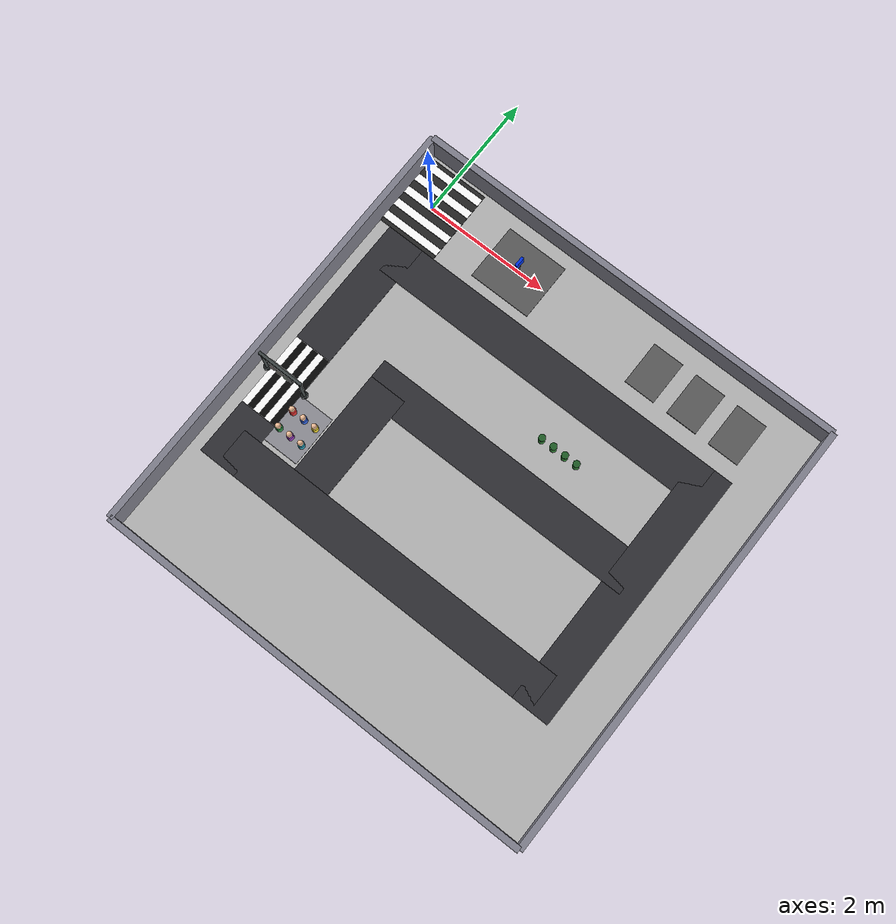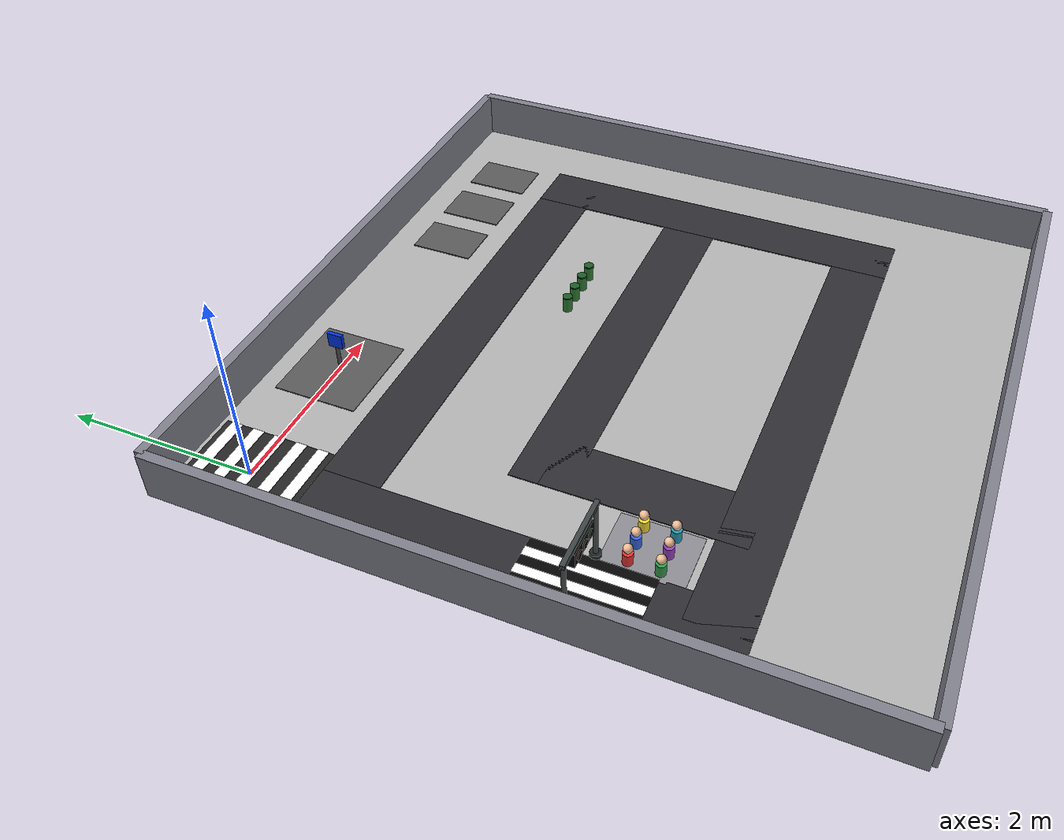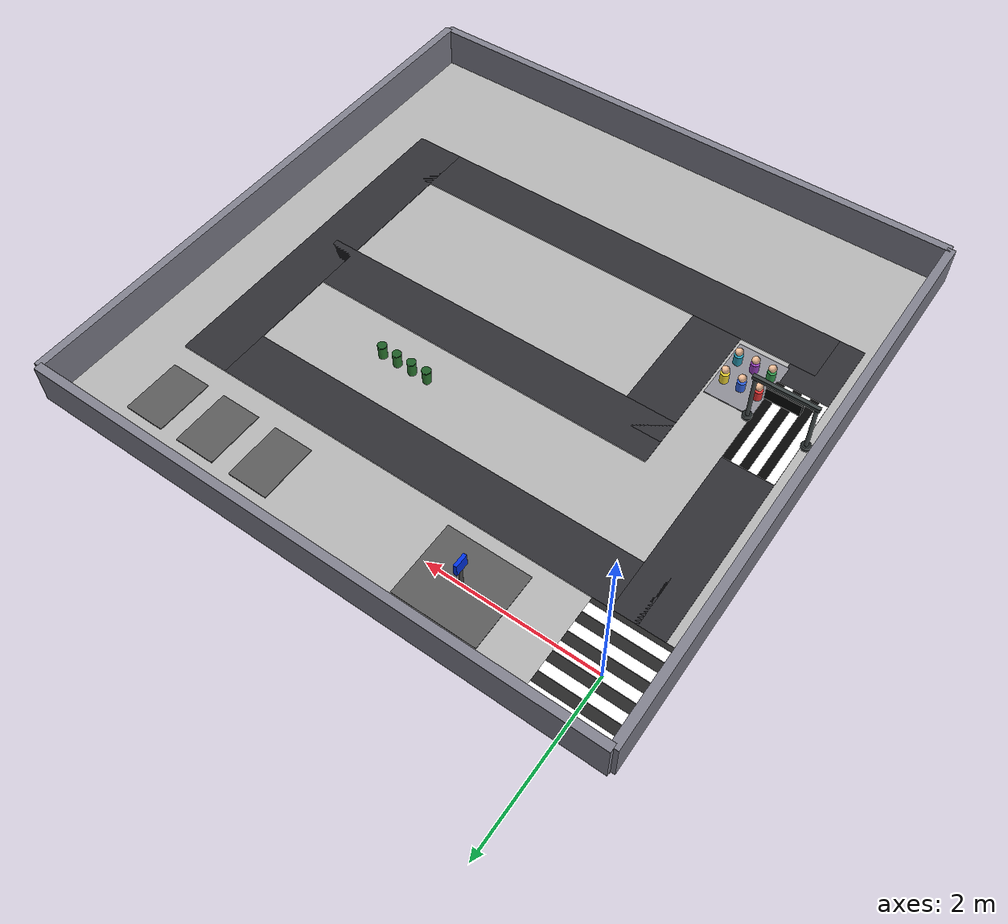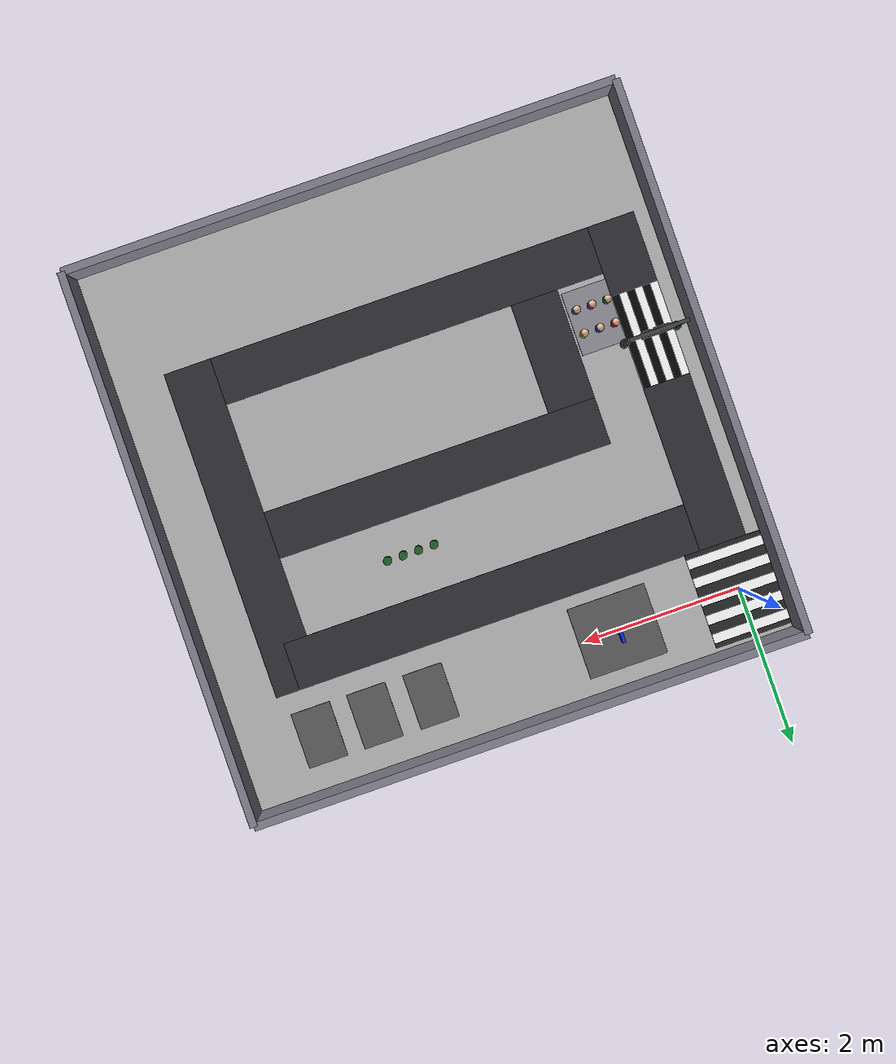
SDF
<sdf version="1.7">
 <world name="robot_nav_field">
  <model name="traffic_light_top">
   <static>1</static>
   <link name="gantry">
    <collision name="left_post_collision">
     <pose>-0.34 0 0.32 0 -0 0</pose>
     <geometry><cylinder><radius>0.022</radius><length>0.64</length></cylinder></geometry>
    </collision>
    <collision name="right_post_collision">
     <pose>0.34 0 0.32 0 -0 0</pose>
     <geometry><cylinder><radius>0.022</radius><length>0.64</length></cylinder></geometry>
    </collision>
    <collision name="crossbar_collision">
     <pose>0 0 0.66 0 -0 0</pose>
     <geometry><box><size>0.75 0.045 0.045</size></box></geometry>
    </collision>
    <collision name="housing_collision">
     <pose>0 0 0.55 0 -0 0</pose>
     <geometry><box><size>0.4 0.075 0.16</size></box></geometry>
    </collision>
    <visual name="left_foot">
     <pose>-0.34 0 0.025 0 -0 0</pose>
     <geometry><cylinder><radius>0.055</radius><length>0.05</length></cylinder></geometry>
     <material><ambient>0.06 0.07 0.07 1</ambient><diffuse>0.12 0.14 0.14 1</diffuse></material>
    </visual>
    <visual name="right_foot">
     <pose>0.34 0 0.025 0 -0 0</pose>
     <geometry><cylinder><radius>0.055</radius><length>0.05</length></cylinder></geometry>
     <material><ambient>0.06 0.07 0.07 1</ambient><diffuse>0.12 0.14 0.14 1</diffuse></material>
    </visual>
    <visual name="left_post">
     <pose>-0.34 0 0.32 0 -0 0</pose>
     <geometry><cylinder><radius>0.022</radius><length>0.64</length></cylinder></geometry>
     <material>
      <ambient>0.16 0.18 0.18 1</ambient>
      <diffuse>0.28 0.31 0.31 1</diffuse>
      <specular>0.25 0.25 0.25 1</specular>
     </material>
    </visual>
    <visual name="right_post">
     <pose>0.34 0 0.32 0 -0 0</pose>
     <geometry><cylinder><radius>0.022</radius><length>0.64</length></cylinder></geometry>
     <material>
      <ambient>0.16 0.18 0.18 1</ambient>
      <diffuse>0.28 0.31 0.31 1</diffuse>
      <specular>0.25 0.25 0.25 1</specular>
     </material>
    </visual>
    <visual name="crossbar">
     <pose>0 0 0.66 0 -0 0</pose>
     <geometry><box><size>0.75 0.045 0.045</size></box></geometry>
     <material>
      <ambient>0.12 0.14 0.14 1</ambient>
      <diffuse>0.24 0.27 0.27 1</diffuse>
      <specular>0.25 0.25 0.25 1</specular>
     </material>
    </visual>
    <visual name="left_hanger">
     <pose>-0.14 0 0.615 0 -0 0</pose>
     <geometry><box><size>0.025 0.035 0.07</size></box></geometry>
     <material><ambient>0.06 0.07 0.07 1</ambient><diffuse>0.12 0.14 0.14 1</diffuse></material>
    </visual>
    <visual name="right_hanger">
     <pose>0.14 0 0.615 0 -0 0</pose>
     <geometry><box><size>0.025 0.035 0.07</size></box></geometry>
     <material><ambient>0.06 0.07 0.07 1</ambient><diffuse>0.12 0.14 0.14 1</diffuse></material>
    </visual>
    <visual name="housing">
     <pose>0 0 0.55 0 -0 0</pose>
     <geometry><box><size>0.4 0.075 0.16</size></box></geometry>
     <material>
      <ambient>0.008 0.01 0.01 1</ambient>
      <diffuse>0.016 0.02 0.02 1</diffuse>
      <specular>0.1 0.1 0.1 1</specular>
     </material>
    </visual>
    <visual name="red_lens_off">
     <pose>-0.12 -0.044 0.55 1.5708 -0 0</pose>
     <geometry><cylinder><radius>0.045</radius><length>0.014</length></cylinder></geometry>
     <material><ambient>0.03 0.001 0.001 1</ambient><diffuse>0.045 0.002 0.002 1</diffuse></material>
    </visual>
    <visual name="yellow_lens_off">
     <pose>0 -0.044 0.55 1.5708 -0 0</pose>
     <geometry><cylinder><radius>0.045</radius><length>0.014</length></cylinder></geometry>
     <material><ambient>0.025 0.015 0.001 1</ambient><diffuse>0.04 0.024 0.002 1</diffuse></material>
    </visual>
    <visual name="green_lens_off">
     <pose>0.12 -0.044 0.55 1.5708 -0 0</pose>
     <geometry><cylinder><radius>0.045</radius><length>0.014</length></cylinder></geometry>
     <material><ambient>0.001 0.03 0.003 1</ambient><diffuse>0.002 0.045 0.004 1</diffuse></material>
    </visual>
   </link>
   <pose>0 -3.3 0 0 -0 0</pose>
  </model>
  <model name="traffic_light_top_red_lens">
   <static>1</static>
   <link name="gantry">
    <collision name="left_post_collision">
     <pose>-0.34 0 0.32 0 -0 0</pose>
     <geometry><cylinder><radius>0.022</radius><length>0.64</length></cylinder></geometry>
    </collision>
    <collision name="right_post_collision">
     <pose>0.34 0 0.32 0 -0 0</pose>
     <geometry><cylinder><radius>0.022</radius><length>0.64</length></cylinder></geometry>
    </collision>
    <collision name="crossbar_collision">
     <pose>0 0 0.66 0 -0 0</pose>
     <geometry><box><size>0.75 0.045 0.045</size></box></geometry>
    </collision>
    <collision name="housing_collision">
     <pose>0 0 0.55 0 -0 0</pose>
     <geometry><box><size>0.4 0.075 0.16</size></box></geometry>
    </collision>
    <visual name="left_foot">
     <pose>-0.34 0 0.025 0 -0 0</pose>
     <geometry><cylinder><radius>0.055</radius><length>0.05</length></cylinder></geometry>
     <material><ambient>0.06 0.07 0.07 1</ambient><diffuse>0.12 0.14 0.14 1</diffuse></material>
    </visual>
    <visual name="right_foot">
     <pose>0.34 0 0.025 0 -0 0</pose>
     <geometry><cylinder><radius>0.055</radius><length>0.05</length></cylinder></geometry>
     <material><ambient>0.06 0.07 0.07 1</ambient><diffuse>0.12 0.14 0.14 1</diffuse></material>
    </visual>
    <visual name="left_post">
     <pose>-0.34 0 0.32 0 -0 0</pose>
     <geometry><cylinder><radius>0.022</radius><length>0.64</length></cylinder></geometry>
     <material>
      <ambient>0.16 0.18 0.18 1</ambient>
      <diffuse>0.28 0.31 0.31 1</diffuse>
      <specular>0.25 0.25 0.25 1</specular>
     </material>
    </visual>
    <visual name="right_post">
     <pose>0.34 0 0.32 0 -0 0</pose>
     <geometry><cylinder><radius>0.022</radius><length>0.64</length></cylinder></geometry>
     <material>
      <ambient>0.16 0.18 0.18 1</ambient>
      <diffuse>0.28 0.31 0.31 1</diffuse>
      <specular>0.25 0.25 0.25 1</specular>
     </material>
    </visual>
    <visual name="crossbar">
     <pose>0 0 0.66 0 -0 0</pose>
     <geometry><box><size>0.75 0.045 0.045</size></box></geometry>
     <material>
      <ambient>0.12 0.14 0.14 1</ambient>
      <diffuse>0.24 0.27 0.27 1</diffuse>
      <specular>0.25 0.25 0.25 1</specular>
     </material>
    </visual>
    <visual name="left_hanger">
     <pose>-0.14 0 0.615 0 -0 0</pose>
     <geometry><box><size>0.025 0.035 0.07</size></box></geometry>
     <material><ambient>0.06 0.07 0.07 1</ambient><diffuse>0.12 0.14 0.14 1</diffuse></material>
    </visual>
    <visual name="right_hanger">
     <pose>0.14 0 0.615 0 -0 0</pose>
     <geometry><box><size>0.025 0.035 0.07</size></box></geometry>
     <material><ambient>0.06 0.07 0.07 1</ambient><diffuse>0.12 0.14 0.14 1</diffuse></material>
    </visual>
    <visual name="housing">
     <pose>0 0 0.55 0 -0 0</pose>
     <geometry><box><size>0.4 0.075 0.16</size></box></geometry>
     <material>
      <ambient>0.008 0.01 0.01 1</ambient>
      <diffuse>0.016 0.02 0.02 1</diffuse>
      <specular>0.1 0.1 0.1 1</specular>
     </material>
    </visual>
    <visual name="red_lens_off">
     <pose>-0.12 -0.044 0.55 1.5708 -0 0</pose>
     <geometry><cylinder><radius>0.045</radius><length>0.014</length></cylinder></geometry>
     <material><ambient>0.03 0.001 0.001 1</ambient><diffuse>0.045 0.002 0.002 1</diffuse></material>
    </visual>
    <visual name="yellow_lens_off">
     <pose>0 -0.044 0.55 1.5708 -0 0</pose>
     <geometry><cylinder><radius>0.045</radius><length>0.014</length></cylinder></geometry>
     <material><ambient>0.025 0.015 0.001 1</ambient><diffuse>0.04 0.024 0.002 1</diffuse></material>
    </visual>
    <visual name="green_lens_off">
     <pose>0.12 -0.044 0.55 1.5708 -0 0</pose>
     <geometry><cylinder><radius>0.045</radius><length>0.014</length></cylinder></geometry>
     <material><ambient>0.001 0.03 0.003 1</ambient><diffuse>0.002 0.045 0.004 1</diffuse></material>
    </visual>
   </link>
   <pose>0 -3.3 0 0 -0 0</pose>
  </model>
  <model name="traffic_light_top_yellow_lens">
   <static>1</static>
   <link name="gantry">
    <collision name="left_post_collision">
     <pose>-0.34 0 0.32 0 -0 0</pose>
     <geometry><cylinder><radius>0.022</radius><length>0.64</length></cylinder></geometry>
    </collision>
    <collision name="right_post_collision">
     <pose>0.34 0 0.32 0 -0 0</pose>
     <geometry><cylinder><radius>0.022</radius><length>0.64</length></cylinder></geometry>
    </collision>
    <collision name="crossbar_collision">
     <pose>0 0 0.66 0 -0 0</pose>
     <geometry><box><size>0.75 0.045 0.045</size></box></geometry>
    </collision>
    <collision name="housing_collision">
     <pose>0 0 0.55 0 -0 0</pose>
     <geometry><box><size>0.4 0.075 0.16</size></box></geometry>
    </collision>
    <visual name="left_foot">
     <pose>-0.34 0 0.025 0 -0 0</pose>
     <geometry><cylinder><radius>0.055</radius><length>0.05</length></cylinder></geometry>
     <material><ambient>0.06 0.07 0.07 1</ambient><diffuse>0.12 0.14 0.14 1</diffuse></material>
    </visual>
    <visual name="right_foot">
     <pose>0.34 0 0.025 0 -0 0</pose>
     <geometry><cylinder><radius>0.055</radius><length>0.05</length></cylinder></geometry>
     <material><ambient>0.06 0.07 0.07 1</ambient><diffuse>0.12 0.14 0.14 1</diffuse></material>
    </visual>
    <visual name="left_post">
     <pose>-0.34 0 0.32 0 -0 0</pose>
     <geometry><cylinder><radius>0.022</radius><length>0.64</length></cylinder></geometry>
     <material>
      <ambient>0.16 0.18 0.18 1</ambient>
      <diffuse>0.28 0.31 0.31 1</diffuse>
      <specular>0.25 0.25 0.25 1</specular>
     </material>
    </visual>
    <visual name="right_post">
     <pose>0.34 0 0.32 0 -0 0</pose>
     <geometry><cylinder><radius>0.022</radius><length>0.64</length></cylinder></geometry>
     <material>
      <ambient>0.16 0.18 0.18 1</ambient>
      <diffuse>0.28 0.31 0.31 1</diffuse>
      <specular>0.25 0.25 0.25 1</specular>
     </material>
    </visual>
    <visual name="crossbar">
     <pose>0 0 0.66 0 -0 0</pose>
     <geometry><box><size>0.75 0.045 0.045</size></box></geometry>
     <material>
      <ambient>0.12 0.14 0.14 1</ambient>
      <diffuse>0.24 0.27 0.27 1</diffuse>
      <specular>0.25 0.25 0.25 1</specular>
     </material>
    </visual>
    <visual name="left_hanger">
     <pose>-0.14 0 0.615 0 -0 0</pose>
     <geometry><box><size>0.025 0.035 0.07</size></box></geometry>
     <material><ambient>0.06 0.07 0.07 1</ambient><diffuse>0.12 0.14 0.14 1</diffuse></material>
    </visual>
    <visual name="right_hanger">
     <pose>0.14 0 0.615 0 -0 0</pose>
     <geometry><box><size>0.025 0.035 0.07</size></box></geometry>
     <material><ambient>0.06 0.07 0.07 1</ambient><diffuse>0.12 0.14 0.14 1</diffuse></material>
    </visual>
    <visual name="housing">
     <pose>0 0 0.55 0 -0 0</pose>
     <geometry><box><size>0.4 0.075 0.16</size></box></geometry>
     <material>
      <ambient>0.008 0.01 0.01 1</ambient>
      <diffuse>0.016 0.02 0.02 1</diffuse>
      <specular>0.1 0.1 0.1 1</specular>
     </material>
    </visual>
    <visual name="red_lens_off">
     <pose>-0.12 -0.044 0.55 1.5708 -0 0</pose>
     <geometry><cylinder><radius>0.045</radius><length>0.014</length></cylinder></geometry>
     <material><ambient>0.03 0.001 0.001 1</ambient><diffuse>0.045 0.002 0.002 1</diffuse></material>
    </visual>
    <visual name="yellow_lens_off">
     <pose>0 -0.044 0.55 1.5708 -0 0</pose>
     <geometry><cylinder><radius>0.045</radius><length>0.014</length></cylinder></geometry>
     <material><ambient>0.025 0.015 0.001 1</ambient><diffuse>0.04 0.024 0.002 1</diffuse></material>
    </visual>
    <visual name="green_lens_off">
     <pose>0.12 -0.044 0.55 1.5708 -0 0</pose>
     <geometry><cylinder><radius>0.045</radius><length>0.014</length></cylinder></geometry>
     <material><ambient>0.001 0.03 0.003 1</ambient><diffuse>0.002 0.045 0.004 1</diffuse></material>
    </visual>
   </link>
   <pose>0 -3.3 0 0 -0 0</pose>
  </model>
  <model name="traffic_light_top_green_lens">
   <static>1</static>
   <link name="gantry">
    <collision name="left_post_collision">
     <pose>-0.34 0 0.32 0 -0 0</pose>
     <geometry><cylinder><radius>0.022</radius><length>0.64</length></cylinder></geometry>
    </collision>
    <collision name="right_post_collision">
     <pose>0.34 0 0.32 0 -0 0</pose>
     <geometry><cylinder><radius>0.022</radius><length>0.64</length></cylinder></geometry>
    </collision>
    <collision name="crossbar_collision">
     <pose>0 0 0.66 0 -0 0</pose>
     <geometry><box><size>0.75 0.045 0.045</size></box></geometry>
    </collision>
    <collision name="housing_collision">
     <pose>0 0 0.55 0 -0 0</pose>
     <geometry><box><size>0.4 0.075 0.16</size></box></geometry>
    </collision>
    <visual name="left_foot">
     <pose>-0.34 0 0.025 0 -0 0</pose>
     <geometry><cylinder><radius>0.055</radius><length>0.05</length></cylinder></geometry>
     <material><ambient>0.06 0.07 0.07 1</ambient><diffuse>0.12 0.14 0.14 1</diffuse></material>
    </visual>
    <visual name="right_foot">
     <pose>0.34 0 0.025 0 -0 0</pose>
     <geometry><cylinder><radius>0.055</radius><length>0.05</length></cylinder></geometry>
     <material><ambient>0.06 0.07 0.07 1</ambient><diffuse>0.12 0.14 0.14 1</diffuse></material>
    </visual>
    <visual name="left_post">
     <pose>-0.34 0 0.32 0 -0 0</pose>
     <geometry><cylinder><radius>0.022</radius><length>0.64</length></cylinder></geometry>
     <material>
      <ambient>0.16 0.18 0.18 1</ambient>
      <diffuse>0.28 0.31 0.31 1</diffuse>
      <specular>0.25 0.25 0.25 1</specular>
     </material>
    </visual>
    <visual name="right_post">
     <pose>0.34 0 0.32 0 -0 0</pose>
     <geometry><cylinder><radius>0.022</radius><length>0.64</length></cylinder></geometry>
     <material>
      <ambient>0.16 0.18 0.18 1</ambient>
      <diffuse>0.28 0.31 0.31 1</diffuse>
      <specular>0.25 0.25 0.25 1</specular>
     </material>
    </visual>
    <visual name="crossbar">
     <pose>0 0 0.66 0 -0 0</pose>
     <geometry><box><size>0.75 0.045 0.045</size></box></geometry>
     <material>
      <ambient>0.12 0.14 0.14 1</ambient>
      <diffuse>0.24 0.27 0.27 1</diffuse>
      <specular>0.25 0.25 0.25 1</specular>
     </material>
    </visual>
    <visual name="left_hanger">
     <pose>-0.14 0 0.615 0 -0 0</pose>
     <geometry><box><size>0.025 0.035 0.07</size></box></geometry>
     <material><ambient>0.06 0.07 0.07 1</ambient><diffuse>0.12 0.14 0.14 1</diffuse></material>
    </visual>
    <visual name="right_hanger">
     <pose>0.14 0 0.615 0 -0 0</pose>
     <geometry><box><size>0.025 0.035 0.07</size></box></geometry>
     <material><ambient>0.06 0.07 0.07 1</ambient><diffuse>0.12 0.14 0.14 1</diffuse></material>
    </visual>
    <visual name="housing">
     <pose>0 0 0.55 0 -0 0</pose>
     <geometry><box><size>0.4 0.075 0.16</size></box></geometry>
     <material>
      <ambient>0.008 0.01 0.01 1</ambient>
      <diffuse>0.016 0.02 0.02 1</diffuse>
      <specular>0.1 0.1 0.1 1</specular>
     </material>
    </visual>
    <visual name="red_lens_off">
     <pose>-0.12 -0.044 0.55 1.5708 -0 0</pose>
     <geometry><cylinder><radius>0.045</radius><length>0.014</length></cylinder></geometry>
     <material><ambient>0.03 0.001 0.001 1</ambient><diffuse>0.045 0.002 0.002 1</diffuse></material>
    </visual>
    <visual name="yellow_lens_off">
     <pose>0 -0.044 0.55 1.5708 -0 0</pose>
     <geometry><cylinder><radius>0.045</radius><length>0.014</length></cylinder></geometry>
     <material><ambient>0.025 0.015 0.001 1</ambient><diffuse>0.04 0.024 0.002 1</diffuse></material>
    </visual>
    <visual name="green_lens_off">
     <pose>0.12 -0.044 0.55 1.5708 -0 0</pose>
     <geometry><cylinder><radius>0.045</radius><length>0.014</length></cylinder></geometry>
     <material><ambient>0.001 0.03 0.003 1</ambient><diffuse>0.002 0.045 0.004 1</diffuse></material>
    </visual>
   </link>
   <pose>0 -3.3 0 0 -0 0</pose>
  </model>
  <model name="ground_plane">
   <static>1</static>
   <pose>2.975 -2.8 -0.025 0 -0 0</pose>
   <link name="ground_link">
    <visual name="ground_visual">
     <geometry><box><size>7 7 0.05</size></box></geometry>
     <material><ambient>0.7 0.7 0.7 1</ambient><diffuse>0.7 0.7 0.7 1</diffuse></material>
    </visual>
    <collision name="ground_collision"><geometry><box><size>7 7 0.05</size></box></geometry></collision>
   </link>
  </model>
  <model name="boundary_walls">
   <static>1</static>
   <link name="north_wall">
    <pose>-0.525 -2.8 0.25 0 -0 0</pose>
    <visual name="north_visual">
     <geometry><box><size>0.1 7 0.5</size></box></geometry>
     <material><ambient>0.5 0.5 0.55 1</ambient><diffuse>0.5 0.5 0.55 1</diffuse></material>
    </visual>
    <collision name="north_collision"><geometry><box><size>0.1 7 0.5</size></box></geometry></collision>
   </link>
   <link name="south_wall">
    <pose>6.475 -2.8 0.25 0 -0 0</pose>
    <visual name="south_visual">
     <geometry><box><size>0.1 7 0.5</size></box></geometry>
     <material><ambient>0.5 0.5 0.55 1</ambient><diffuse>0.5 0.5 0.55 1</diffuse></material>
    </visual>
    <collision name="south_collision"><geometry><box><size>0.1 7 0.5</size></box></geometry></collision>
   </link>
   <link name="west_wall">
    <pose>2.975 -6.3 0.25 0 -0 0</pose>
    <visual name="west_visual">
     <geometry><box><size>7 0.1 0.5</size></box></geometry>
     <material><ambient>0.5 0.5 0.55 1</ambient><diffuse>0.5 0.5 0.55 1</diffuse></material>
    </visual>
    <collision name="west_collision"><geometry><box><size>7 0.1 0.5</size></box></geometry></collision>
   </link>
   <link name="east_wall">
    <pose>2.975 0.7 0.25 0 -0 0</pose>
    <visual name="east_visual">
     <geometry><box><size>7 0.1 0.5</size></box></geometry>
     <material><ambient>0.5 0.5 0.55 1</ambient><diffuse>0.5 0.5 0.55 1</diffuse></material>
    </visual>
    <collision name="east_collision"><geometry><box><size>7 0.1 0.5</size></box></geometry></collision>
   </link>
  </model>
  <model name="roads">
   <static>1</static>
   <link name="road_top">
    <pose>0 -2.7 0.005 0 -0 0</pose>
    <visual name="road_top_visual">
     <geometry><box><size>0.6 4.2 0.01</size></box></geometry>
     <material><ambient>0.18 0.18 0.2 1</ambient><diffuse>0.18 0.18 0.2 1</diffuse></material>
    </visual>
    <collision name="road_top_collision"><geometry><box><size>0.6 3.6 0.01</size></box></geometry></collision>
   </link>
   <link name="road_right">
    <pose>2.75 -0.9 0.005 0 -0 0</pose>
    <visual name="road_right_visual">
     <geometry><box><size>5.5 0.6 0.01</size></box></geometry>
     <material><ambient>0.18 0.18 0.2 1</ambient><diffuse>0.18 0.18 0.2 1</diffuse></material>
    </visual>
    <collision name="road_right_collision"><geometry><box><size>5.5 0.6 0.01</size></box></geometry></collision>
   </link>
   <link name="road_bottom_left">
    <pose>5.5 -2.7 0.005 0 -0 0</pose>
    <visual name="road_bl_visual">
     <geometry><box><size>0.6 4.2 0.01</size></box></geometry>
     <material><ambient>0.18 0.18 0.2 1</ambient><diffuse>0.18 0.18 0.2 1</diffuse></material>
    </visual>
    <collision name="road_bl_collision"><geometry><box><size>0.6 3.6 0.01</size></box></geometry></collision>
   </link>
   <link name="road_left">
    <pose>2.75 -4.5 0.005 0 -0 0</pose>
    <visual name="road_left_visual">
     <geometry><box><size>5.5 0.6 0.01</size></box></geometry>
     <material><ambient>0.18 0.18 0.2 1</ambient><diffuse>0.18 0.18 0.2 1</diffuse></material>
    </visual>
    <collision name="road_left_collision"><geometry><box><size>5.5 0.6 0.01</size></box></geometry></collision>
   </link>
   <link name="road_vertical">
    <pose>3.2 -2.5 0.005 0 -0 0</pose>
    <visual name="road_vertical_visual">
     <geometry><box><size>4.6 0.6 0.01</size></box></geometry>
     <material><ambient>0.18 0.18 0.2 1</ambient><diffuse>0.18 0.18 0.2 1</diffuse></material>
    </visual>
    <collision name="road_vertical_collision">
     <geometry><box><size>3.4 0.6 0.01</size></box></geometry>
    </collision>
   </link>
   <link name="road_horizontal">
    <pose>1.2 -3.5 0.005 0 -0 0</pose>
    <visual name="road_horizontal_visual">
     <geometry><box><size>0.6 2 0.01</size></box></geometry>
     <material><ambient>0.18 0.18 0.2 1</ambient><diffuse>0.18 0.18 0.2 1</diffuse></material>
    </visual>
    <collision name="road_horizontal_collision">
     <geometry><box><size>0.6 2 0.01</size></box></geometry>
    </collision>
   </link>
  </model>
  <model name="start_finish">
   <static>1</static>
   <link name="zebra_link">
    <visual name="zebra_base">
     <pose>0 0 0.006 0 -0 0</pose>
     <geometry><box><size>1 1.2 0.012</size></box></geometry>
     <material><ambient>0.15 0.15 0.15 1</ambient><diffuse>0.15 0.15 0.15 1</diffuse></material>
    </visual>
    <collision name="zebra_base_col">
     <pose>0 0 0.006 0 -0 0</pose>
     <geometry><box><size>1 1.2 0.012</size></box></geometry>
    </collision>
    <visual name="stripe_1">
     <pose>0 -0.48 0.013 0 -0 0</pose>
     <geometry><box><size>1 0.12 0.014</size></box></geometry>
     <material><ambient>1 1 1 1</ambient><diffuse>1 1 1 1</diffuse></material>
    </visual>
    <visual name="stripe_2">
     <pose>0 -0.24 0.013 0 -0 0</pose>
     <geometry><box><size>1 0.12 0.014</size></box></geometry>
     <material><ambient>1 1 1 1</ambient><diffuse>1 1 1 1</diffuse></material>
    </visual>
    <visual name="stripe_3">
     <pose>0 0 0.013 0 -0 0</pose>
     <geometry><box><size>1 0.12 0.014</size></box></geometry>
     <material><ambient>1 1 1 1</ambient><diffuse>1 1 1 1</diffuse></material>
    </visual>
    <visual name="stripe_4">
     <pose>0 0.24 0.013 0 -0 0</pose>
     <geometry><box><size>1 0.12 0.014</size></box></geometry>
     <material><ambient>1 1 1 1</ambient><diffuse>1 1 1 1</diffuse></material>
    </visual>
    <visual name="stripe_5">
     <pose>0 0.48 0.013 0 -0 0</pose>
     <geometry><box><size>1 0.12 0.014</size></box></geometry>
     <material><ambient>1 1 1 1</ambient><diffuse>1 1 1 1</diffuse></material>
    </visual>
   </link>
  </model>
  <model name="zebra_top">
   <static>1</static>
   <pose>0 -3.3 -0.006618 0 -0 0</pose>
   <link name="zebra_top_link">
    <visual name="base">
     <pose>0 0 0.006 0 -0 0</pose>
     <geometry><box><size>0.6 1.2 0.012</size></box></geometry>
     <material><ambient>0.2 0.2 0.2 1</ambient><diffuse>0.2 0.2 0.2 1</diffuse></material>
    </visual>
    <collision name="base_col">
     <pose>0 0 0.006 0 -0 0</pose>
     <geometry><box><size>0.6 1.2 0.012</size></box></geometry>
    </collision>
    <visual name="w1">
     <pose>-0.25 0 0.013 0 -0 0</pose>
     <geometry><box><size>0.1 1.2 0.014</size></box></geometry>
     <material><ambient>1 1 1 1</ambient><diffuse>1 1 1 1</diffuse></material>
    </visual>
    <visual name="k1">
     <pose>-0.15 0 0.013 0 -0 0</pose>
     <geometry><box><size>0.1 1.2 0.014</size></box></geometry>
     <material><ambient>0.02 0.02 0.02 1</ambient><diffuse>0.02 0.02 0.02 1</diffuse></material>
    </visual>
    <visual name="w2">
     <pose>-0.05 0 0.013 0 -0 0</pose>
     <geometry><box><size>0.1 1.2 0.014</size></box></geometry>
     <material><ambient>1 1 1 1</ambient><diffuse>1 1 1 1</diffuse></material>
    </visual>
    <visual name="k2">
     <pose>0.05 0 0.013 0 -0 0</pose>
     <geometry><box><size>0.1 1.2 0.014</size></box></geometry>
     <material><ambient>0.02 0.02 0.02 1</ambient><diffuse>0.02 0.02 0.02 1</diffuse></material>
    </visual>
    <visual name="w3">
     <pose>0.15 0 0.013 0 -0 0</pose>
     <geometry><box><size>0.1 1.2 0.014</size></box></geometry>
     <material><ambient>1 1 1 1</ambient><diffuse>1 1 1 1</diffuse></material>
    </visual>
    <visual name="k3">
     <pose>0.25 0 0.013 0 -0 0</pose>
     <geometry><box><size>0.1 1.2 0.014</size></box></geometry>
     <material><ambient>0.02 0.02 0.02 1</ambient><diffuse>0.02 0.02 0.02 1</diffuse></material>
    </visual>
   </link>
  </model>
  <model name="block_a">
   <static>1</static>
   <pose>0.571732 -3.73098 0 0 0 -1.5682</pose>
   <link name="block_a_link">
    <visual name="sidewalk">
     <pose>0 0 0.005 0 -0 0</pose>
     <geometry><box><size>0.8 0.6 0.01</size></box></geometry>
     <material><ambient>0.55 0.55 0.58 1</ambient><diffuse>0.55 0.55 0.58 1</diffuse></material>
    </visual>
    <collision name="sidewalk_col">
     <pose>0 0 0.005 0 -0 0</pose>
     <geometry><box><size>0.8 0.6 0.01</size></box></geometry>
    </collision>
    <visual name="p1_body">
     <pose>-0.15 -0.2 0.07 0 -0 0</pose>
     <geometry><cylinder><radius>0.05</radius><length>0.14</length></cylinder></geometry>
     <material><ambient>0.9 0.2 0.2 1</ambient><diffuse>0.9 0.2 0.2 1</diffuse></material>
    </visual>
    <visual name="p1_head">
     <pose>-0.15 -0.2 0.19 0 -0 0</pose>
     <geometry><sphere><radius>0.045</radius></sphere></geometry>
     <material><ambient>0.95 0.75 0.6 1</ambient><diffuse>0.95 0.75 0.6 1</diffuse></material>
    </visual>
    <visual name="p2_body">
     <pose>-0.15 0 0.07 0 -0 0</pose>
     <geometry><cylinder><radius>0.05</radius><length>0.14</length></cylinder></geometry>
     <material><ambient>0.2 0.4 0.9 1</ambient><diffuse>0.2 0.4 0.9 1</diffuse></material>
    </visual>
    <visual name="p2_head">
     <pose>-0.15 0 0.19 0 -0 0</pose>
     <geometry><sphere><radius>0.045</radius></sphere></geometry>
     <material><ambient>0.95 0.75 0.6 1</ambient><diffuse>0.95 0.75 0.6 1</diffuse></material>
    </visual>
    <visual name="p3_body">
     <pose>-0.15 0.2 0.07 0 -0 0</pose>
     <geometry><cylinder><radius>0.05</radius><length>0.14</length></cylinder></geometry>
     <material><ambient>0.95 0.85 0.2 1</ambient><diffuse>0.95 0.85 0.2 1</diffuse></material>
    </visual>
    <visual name="p3_head">
     <pose>-0.15 0.2 0.19 0 -0 0</pose>
     <geometry><sphere><radius>0.045</radius></sphere></geometry>
     <material><ambient>0.95 0.75 0.6 1</ambient><diffuse>0.95 0.75 0.6 1</diffuse></material>
    </visual>
    <visual name="p4_body">
     <pose>0.15 -0.2 0.07 0 -0 0</pose>
     <geometry><cylinder><radius>0.05</radius><length>0.14</length></cylinder></geometry>
     <material><ambient>0.2 0.6 0.3 1</ambient><diffuse>0.2 0.6 0.3 1</diffuse></material>
    </visual>
    <visual name="p4_head">
     <pose>0.15 -0.2 0.19 0 -0 0</pose>
     <geometry><sphere><radius>0.045</radius></sphere></geometry>
     <material><ambient>0.95 0.75 0.6 1</ambient><diffuse>0.95 0.75 0.6 1</diffuse></material>
    </visual>
    <visual name="p5_body">
     <pose>0.15 0 0.07 0 -0 0</pose>
     <geometry><cylinder><radius>0.05</radius><length>0.14</length></cylinder></geometry>
     <material><ambient>0.6 0.25 0.75 1</ambient><diffuse>0.6 0.25 0.75 1</diffuse></material>
    </visual>
    <visual name="p5_head">
     <pose>0.15 0 0.19 0 -0 0</pose>
     <geometry><sphere><radius>0.045</radius></sphere></geometry>
     <material><ambient>0.95 0.75 0.6 1</ambient><diffuse>0.95 0.75 0.6 1</diffuse></material>
    </visual>
    <visual name="p6_body">
     <pose>0.15 0.2 0.07 0 -0 0</pose>
     <geometry><cylinder><radius>0.05</radius><length>0.14</length></cylinder></geometry>
     <material><ambient>0.15 0.6 0.7 1</ambient><diffuse>0.15 0.6 0.7 1</diffuse></material>
    </visual>
    <visual name="p6_head">
     <pose>0.15 0.2 0.19 0 -0 0</pose>
     <geometry><sphere><radius>0.045</radius></sphere></geometry>
     <material><ambient>0.95 0.75 0.6 1</ambient><diffuse>0.95 0.75 0.6 1</diffuse></material>
    </visual>
   </link>
  </model>
  <model name="ev_parking_zone">
   <static>1</static>
   <pose>1.58 0 0 0 -0 0</pose>
   <link name="ev_parking_link">
    <visual name="pad">
     <pose>0 0 0.005 0 -0 0</pose>
     <geometry><box><size>1 0.9 0.01</size></box></geometry>
     <material><ambient>0.35 0.35 0.35 1</ambient><diffuse>0.35 0.35 0.35 1</diffuse></material>
    </visual>
    <collision name="pad_col">
     <pose>0 0 0.005 0 -0 0</pose>
     <geometry><box><size>1 0.9 0.01</size></box></geometry>
    </collision>
    <visual name="p_pole">
     <pose>0 0 0.175 0 -0 0</pose>
     <geometry><cylinder><radius>0.02</radius><length>0.35</length></cylinder></geometry>
     <material><ambient>0.3 0.3 0.3 1</ambient><diffuse>0.3 0.3 0.3 1</diffuse></material>
    </visual>
    <collision name="p_pole_col">
     <pose>0 0 0.175 0 -0 0</pose>
     <geometry><cylinder><radius>0.02</radius><length>0.35</length></cylinder></geometry>
    </collision>
    <visual name="p_sign">
     <pose>0 0 0.38 0 -0 0</pose>
     <geometry><box><size>0.04 0.16 0.16</size></box></geometry>
     <material><ambient>0 0.2 0.9 1</ambient><diffuse>0 0.2 0.9 1</diffuse></material>
    </visual>
   </link>
  </model>
  <model name="parking_slots">
   <static>1</static>
   <link name="slot_3">
    <pose>4 0 0.006 0 -0 0</pose>
    <visual name="slot3_visual">
     <geometry><box><size>0.5 0.7 0.012</size></box></geometry>
     <material><ambient>0.35 0.35 0.35 1</ambient><diffuse>0.35 0.35 0.35 1</diffuse></material>
    </visual>
    <collision name="slot3_col"><geometry><box><size>0.5 0.7 0.012</size></box></geometry></collision>
   </link>
   <link name="slot_2">
    <pose>4.73 0 0.006 0 -0 0</pose>
    <visual name="slot2_visual">
     <geometry><box><size>0.5 0.7 0.012</size></box></geometry>
     <material><ambient>0.35 0.35 0.35 1</ambient><diffuse>0.35 0.35 0.35 1</diffuse></material>
    </visual>
    <collision name="slot2_col"><geometry><box><size>0.5 0.7 0.012</size></box></geometry></collision>
   </link>
   <link name="slot_1">
    <pose>5.45 0 0.006 0 -0 0</pose>
    <visual name="slot1_visual">
     <geometry><box><size>0.5 0.7 0.012</size></box></geometry>
     <material><ambient>0.35 0.35 0.35 1</ambient><diffuse>0.35 0.35 0.35 1</diffuse></material>
    </visual>
    <collision name="slot1_col"><geometry><box><size>0.5 0.7 0.012</size></box></geometry></collision>
   </link>
  </model>
  <model name="trash_bins">
   <static>1</static>
   <link name="bin_1">
    <pose>3.35 -1.75 0 0 -0 0</pose>
    <visual name="body">
     <pose>0 0 0.085 0 -0 0</pose>
     <geometry><cylinder><radius>0.05</radius><length>0.17</length></cylinder></geometry>
     <material><ambient>0.18 0.49 0.2 1</ambient><diffuse>0.18 0.49 0.2 1</diffuse></material>
    </visual>
    <collision name="body_col">
     <pose>0 0 0.085 0 -0 0</pose>
     <geometry><cylinder><radius>0.05</radius><length>0.17</length></cylinder></geometry>
    </collision>
    <visual name="lid">
     <pose>0 0 0.176 0 -0 0</pose>
     <geometry><cylinder><radius>0.053</radius><length>0.013</length></cylinder></geometry>
     <material><ambient>0.12 0.36 0.15 1</ambient><diffuse>0.12 0.36 0.15 1</diffuse></material>
    </visual>
   </link>
   <link name="bin_2">
    <pose>3.55 -1.75 0 0 -0 0</pose>
    <visual name="body">
     <pose>0 0 0.085 0 -0 0</pose>
     <geometry><cylinder><radius>0.05</radius><length>0.17</length></cylinder></geometry>
     <material><ambient>0.18 0.49 0.2 1</ambient><diffuse>0.18 0.49 0.2 1</diffuse></material>
    </visual>
    <collision name="body_col">
     <pose>0 0 0.085 0 -0 0</pose>
     <geometry><cylinder><radius>0.05</radius><length>0.17</length></cylinder></geometry>
    </collision>
    <visual name="lid">
     <pose>0 0 0.176 0 -0 0</pose>
     <geometry><cylinder><radius>0.053</radius><length>0.013</length></cylinder></geometry>
     <material><ambient>0.12 0.36 0.15 1</ambient><diffuse>0.12 0.36 0.15 1</diffuse></material>
    </visual>
   </link>
   <link name="bin_3">
    <pose>3.75 -1.75 0 0 -0 0</pose>
    <visual name="body">
     <pose>0 0 0.085 0 -0 0</pose>
     <geometry><cylinder><radius>0.05</radius><length>0.17</length></cylinder></geometry>
     <material><ambient>0.18 0.49 0.2 1</ambient><diffuse>0.18 0.49 0.2 1</diffuse></material>
    </visual>
    <collision name="body_col">
     <pose>0 0 0.085 0 -0 0</pose>
     <geometry><cylinder><radius>0.05</radius><length>0.17</length></cylinder></geometry>
    </collision>
    <visual name="lid">
     <pose>0 0 0.176 0 -0 0</pose>
     <geometry><cylinder><radius>0.053</radius><length>0.013</length></cylinder></geometry>
     <material><ambient>0.12 0.36 0.15 1</ambient><diffuse>0.12 0.36 0.15 1</diffuse></material>
    </visual>
   </link>
   <link name="bin_4">
    <pose>3.95 -1.75 0 0 -0 0</pose>
    <visual name="body">
     <pose>0 0 0.085 0 -0 0</pose>
     <geometry><cylinder><radius>0.05</radius><length>0.17</length></cylinder></geometry>
     <material><ambient>0.18 0.49 0.2 1</ambient><diffuse>0.18 0.49 0.2 1</diffuse></material>
    </visual>
    <collision name="body_col">
     <pose>0 0 0.085 0 -0 0</pose>
     <geometry><cylinder><radius>0.05</radius><length>0.17</length></cylinder></geometry>
    </collision>
    <visual name="lid">
     <pose>0 0 0.176 0 -0 0</pose>
     <geometry><cylinder><radius>0.053</radius><length>0.013</length></cylinder></geometry>
     <material><ambient>0.12 0.36 0.15 1</ambient><diffuse>0.12 0.36 0.15 1</diffuse></material>
    </visual>
   </link>
  </model>
 </world>
</sdf>
